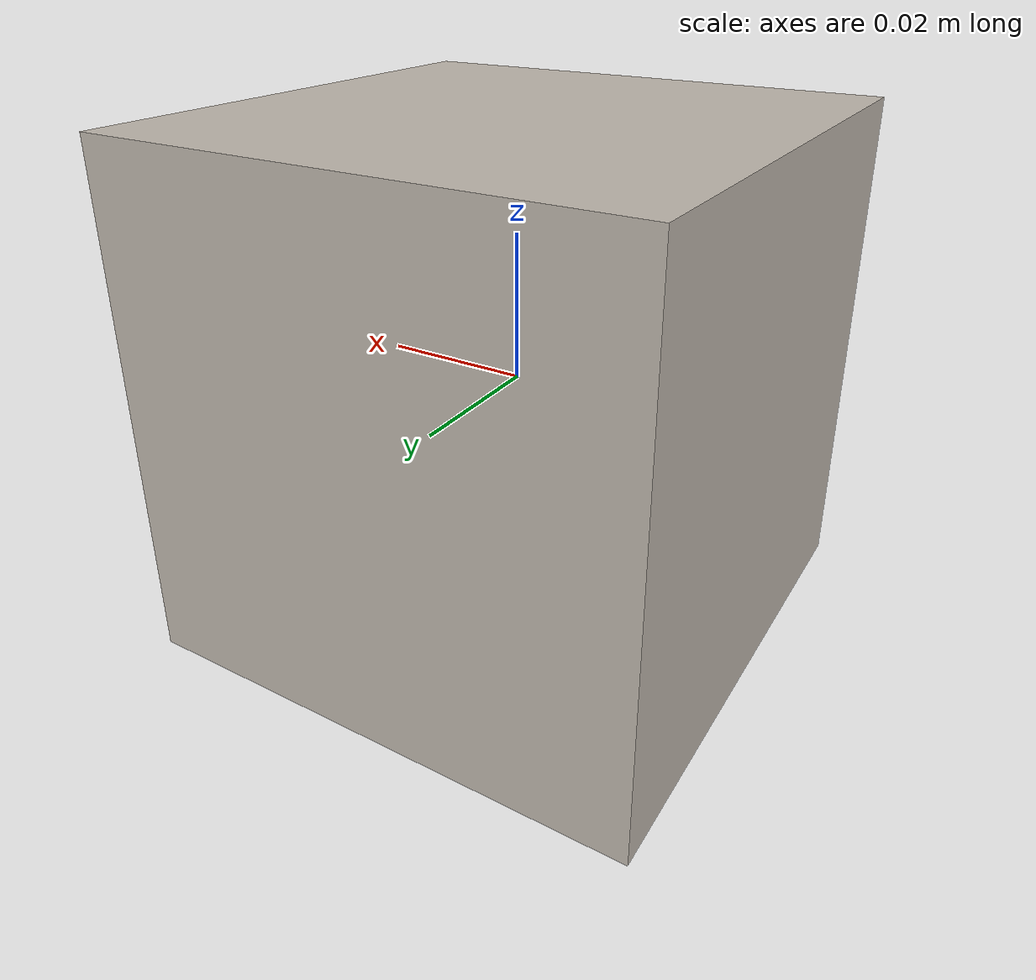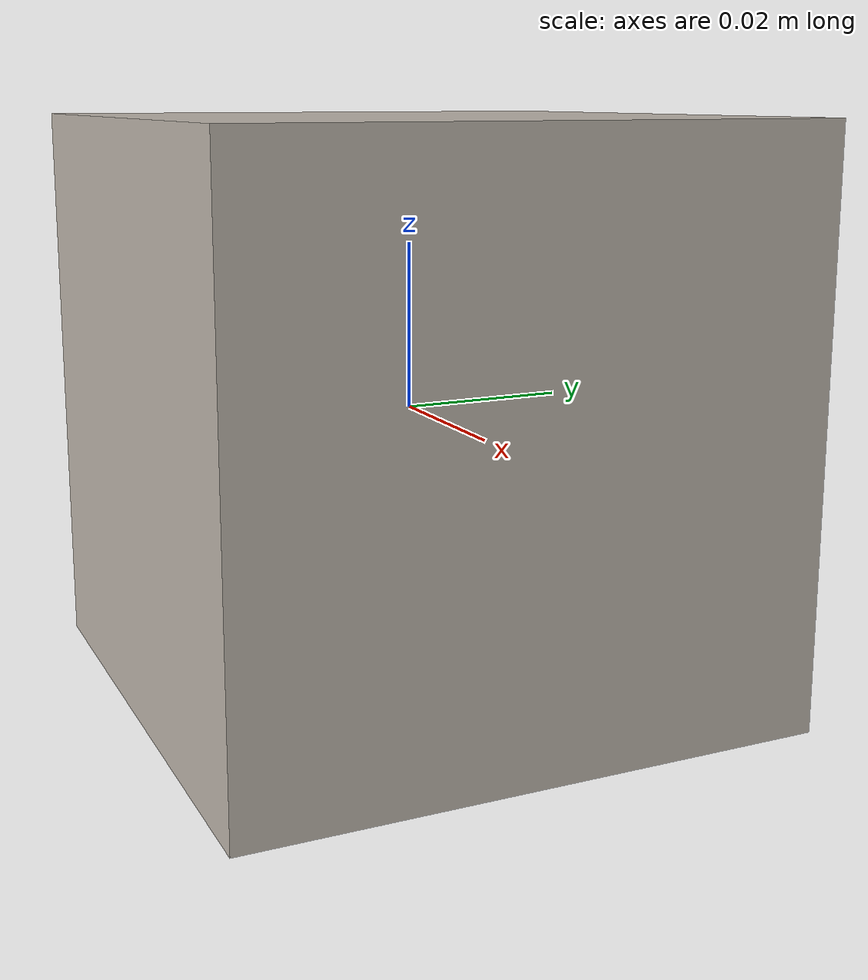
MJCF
<mujoco>
  <asset>
    <texture name="cube" type="cube"
             fileup="../common_assets/reorientation_cube_textures/fileup.png"
             fileback="../common_assets/reorientation_cube_textures/fileback.png"
             filedown="../common_assets/reorientation_cube_textures/filedown.png"
             filefront="../common_assets/reorientation_cube_textures/filefront.png"
             fileleft="../common_assets/reorientation_cube_textures/fileleft.png"
             fileright="../common_assets/reorientation_cube_textures/fileright.png"/>
    <material name="cube" texture="cube"/>
    <texture name="graycube" type="cube"
            fileup="../common_assets/reorientation_cube_textures/grayup.png"
             fileback="../common_assets/reorientation_cube_textures/grayback.png"
             filedown="../common_assets/reorientation_cube_textures/graydown.png"
             filefront="../common_assets/reorientation_cube_textures/grayfront.png"
             fileleft="../common_assets/reorientation_cube_textures/grayleft.png"
             fileright="../common_assets/reorientation_cube_textures/grayright.png"/>
    <material name="graycube" texture="graycube"/>
  </asset>
  <worldbody>
    <light pos="0 0 1"/>
    <body name="cube" pos="0.0 0.0 0.0" quat="1 0 0 0">
      <freejoint/>
      <geom name="cube" type="box" size=".035 .035 .035" mass=".108" material="cube"/>
    </body>
  </worldbody>

   <sensor>
        <framepos name="cube_position" objtype="body" objname="cube"/>
        <framequat name="cube_orientation" objtype="body" objname="cube"/>
        <framelinvel name="cube_linear_velocity" objtype="body" objname="cube"/>
        <frameangvel name="cube_angular_velocity" objtype="body" objname="cube"/>
    </sensor>
</mujoco>
